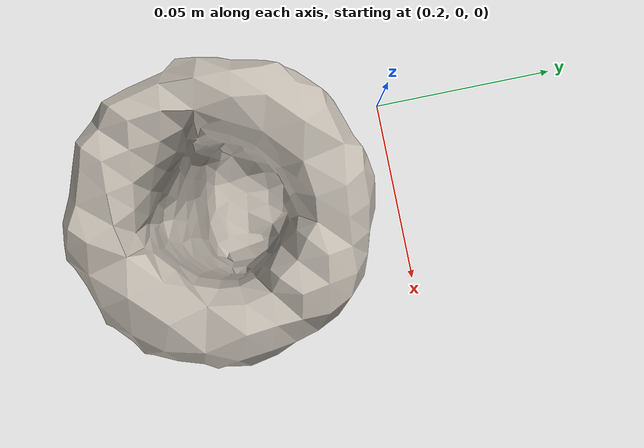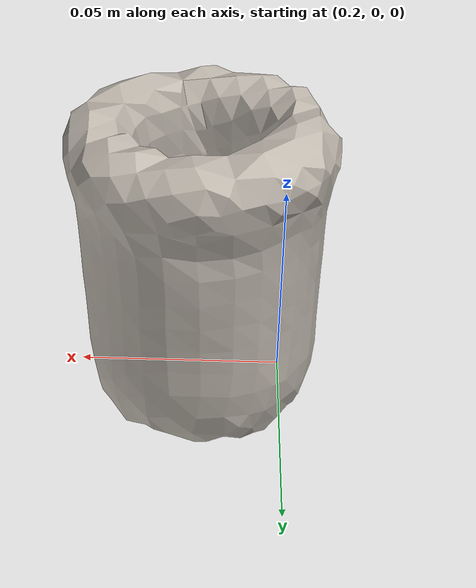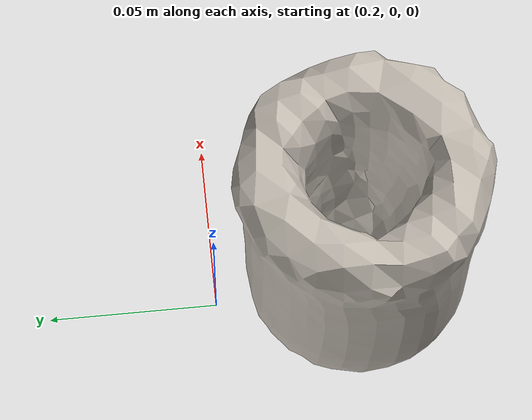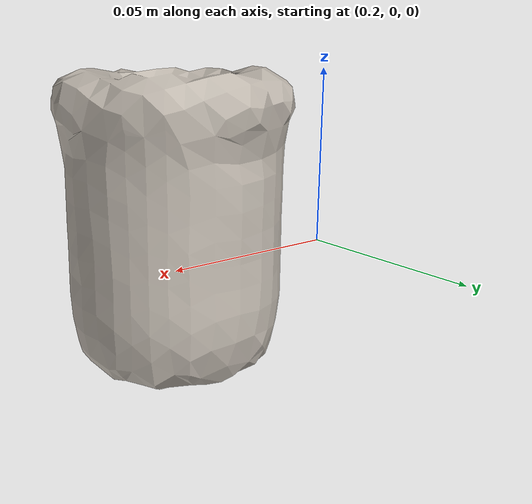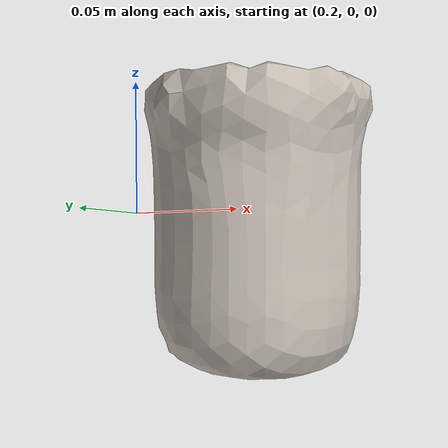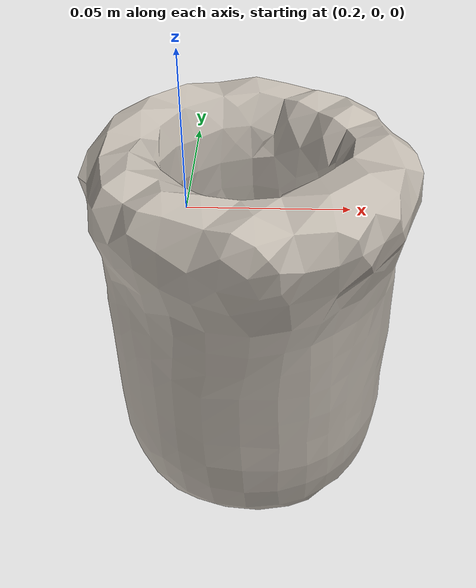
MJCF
<mujoco model="cup_065-f_cups_M">
  <asset>
    <mesh file="meshes/cup_065-f_cups_M.stl" name="cup_mesh" scale="0.7123968275671135 0.7123968275671135 0.7123968275671135"/>
    <texture type="cube" file="/home/jbw/Projects/gc-reorientation/bin_env/assets/textures/ceramic.png" rgb1="1 1 1" name="tex-cup"/>
    <material name="cup" reflectance="0.5" texrepeat="3 3" texture="tex-cup"/>
  </asset>
  <worldbody>
    <body>
      <body name="object">
        <geom pos="0.22109131679318728 -0.04530931568054321 -0.0011943331699955583" quat="1 0 0 0" mesh="cup_mesh" type="mesh" solref="0.02 1" density="0" friction="1.0 1.0 1.0" material="cup" group="0" condim="4"/>
      </body>
      <site rgba="0 0 0 0" size="0.005" pos="0 0 -0.05" name="bottom_site"/>
      <site rgba="0 0 0 0" size="0.005" pos="0 0 0.03" name="top_site"/>
      <site rgba="0 0 0 0" size="0.005" pos="0.02 0.015 0" name="horizontal_radius_site"/>
    </body>
  </worldbody>
</mujoco>
